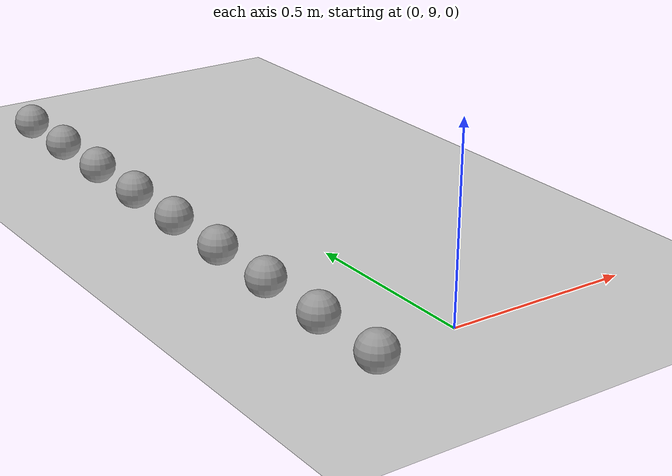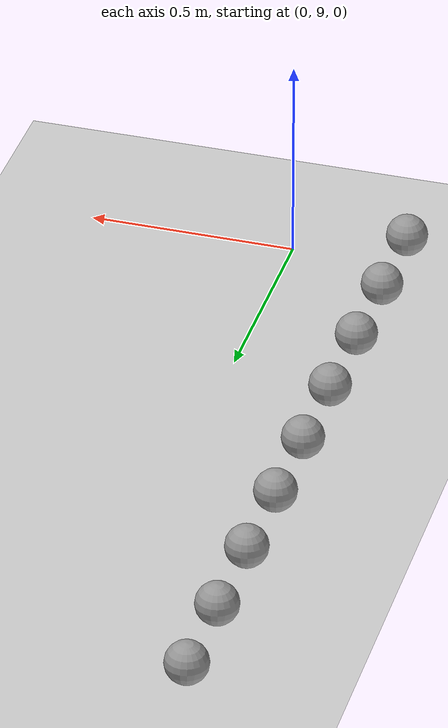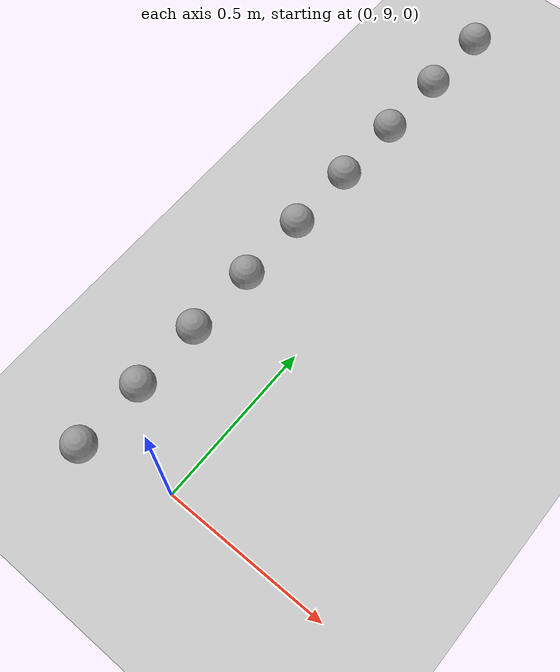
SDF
<sdf version="1.6">
 <world name="default">
  <model name="ground_plane">
   <static>1</static>
   <link name="link">
    <collision name="collision">
     <geometry><plane><normal>0 0 1</normal><size>100 100</size></plane></geometry>
     <surface><friction><ode><mu>100</mu><mu2>50</mu2></ode></friction></surface>
    </collision>
    <visual name="visual">
     <cast_shadows>0</cast_shadows>
     <geometry><plane><normal>0 0 1</normal><size>100 100</size></plane></geometry>
     <material>
      <script><uri>file://media/materials/scripts/gazebo.material</uri><name>Gazebo/Grey</name></script>
     </material>
    </visual>
   </link>
  </model>
  <model name="unit_sphere_0_42">
   <pose>-0.264000 8.938000 0.050000 0 -0 0</pose>
   <link name="link">
    <inertial>
     <mass>1</mass>
     <inertia><ixx>0.1</ixx><ixy>0</ixy><ixz>0</ixz><iyy>0.1</iyy><iyz>0</iyz><izz>0.1</izz></inertia>
    </inertial>
    <collision name="collision"><geometry><sphere><radius>0.050000</radius></sphere></geometry></collision>
    <visual name="visual">
     <geometry><sphere><radius>0.050000</radius></sphere></geometry>
     <material>
      <script><name>Gazebo/Grey</name><uri>file://media/materials/scripts/gazebo.material</uri></script>
     </material>
    </visual>
   </link>
  </model>
  <model name="unit_sphere_0_43">
   <pose>-0.261000 9.157000 0.050000 0 -0 0</pose>
   <link name="link">
    <inertial>
     <mass>1</mass>
     <inertia><ixx>0.1</ixx><ixy>0</ixy><ixz>0</ixz><iyy>0.1</iyy><iyz>0</iyz><izz>0.1</izz></inertia>
    </inertial>
    <collision name="collision"><geometry><sphere><radius>0.050000</radius></sphere></geometry></collision>
    <visual name="visual">
     <geometry><sphere><radius>0.050000</radius></sphere></geometry>
     <material>
      <script><name>Gazebo/Grey</name><uri>file://media/materials/scripts/gazebo.material</uri></script>
     </material>
    </visual>
   </link>
  </model>
  <model name="unit_sphere_0_44">
   <pose>-0.258000 9.376000 0.050000 0 -0 0</pose>
   <link name="link">
    <inertial>
     <mass>1</mass>
     <inertia><ixx>0.1</ixx><ixy>0</ixy><ixz>0</ixz><iyy>0.1</iyy><iyz>0</iyz><izz>0.1</izz></inertia>
    </inertial>
    <collision name="collision"><geometry><sphere><radius>0.050000</radius></sphere></geometry></collision>
    <visual name="visual">
     <geometry><sphere><radius>0.050000</radius></sphere></geometry>
     <material>
      <script><name>Gazebo/Grey</name><uri>file://media/materials/scripts/gazebo.material</uri></script>
     </material>
    </visual>
   </link>
  </model>
  <model name="unit_sphere_0_45">
   <pose>-0.255000 9.595000 0.050000 0 -0 0</pose>
   <link name="link">
    <inertial>
     <mass>1</mass>
     <inertia><ixx>0.1</ixx><ixy>0</ixy><ixz>0</ixz><iyy>0.1</iyy><iyz>0</iyz><izz>0.1</izz></inertia>
    </inertial>
    <collision name="collision"><geometry><sphere><radius>0.050000</radius></sphere></geometry></collision>
    <visual name="visual">
     <geometry><sphere><radius>0.050000</radius></sphere></geometry>
     <material>
      <script><name>Gazebo/Grey</name><uri>file://media/materials/scripts/gazebo.material</uri></script>
     </material>
    </visual>
   </link>
  </model>
  <model name="unit_sphere_0_46">
   <pose>-0.252000 9.814000 0.050000 0 -0 0</pose>
   <link name="link">
    <inertial>
     <mass>1</mass>
     <inertia><ixx>0.1</ixx><ixy>0</ixy><ixz>0</ixz><iyy>0.1</iyy><iyz>0</iyz><izz>0.1</izz></inertia>
    </inertial>
    <collision name="collision"><geometry><sphere><radius>0.050000</radius></sphere></geometry></collision>
    <visual name="visual">
     <geometry><sphere><radius>0.050000</radius></sphere></geometry>
     <material>
      <script><name>Gazebo/Grey</name><uri>file://media/materials/scripts/gazebo.material</uri></script>
     </material>
    </visual>
   </link>
  </model>
  <model name="unit_sphere_0_47">
   <pose>-0.249000 10.030000 0.050000 0 -0 0</pose>
   <link name="link">
    <inertial>
     <mass>1</mass>
     <inertia><ixx>0.1</ixx><ixy>0</ixy><ixz>0</ixz><iyy>0.1</iyy><iyz>0</iyz><izz>0.1</izz></inertia>
    </inertial>
    <collision name="collision"><geometry><sphere><radius>0.050000</radius></sphere></geometry></collision>
    <visual name="visual">
     <geometry><sphere><radius>0.050000</radius></sphere></geometry>
     <material>
      <script><name>Gazebo/Grey</name><uri>file://media/materials/scripts/gazebo.material</uri></script>
     </material>
    </visual>
   </link>
  </model>
  <model name="unit_sphere_0_48">
   <pose>-0.246000 10.250000 0.050000 0 -0 0</pose>
   <link name="link">
    <inertial>
     <mass>1</mass>
     <inertia><ixx>0.1</ixx><ixy>0</ixy><ixz>0</ixz><iyy>0.1</iyy><iyz>0</iyz><izz>0.1</izz></inertia>
    </inertial>
    <collision name="collision"><geometry><sphere><radius>0.050000</radius></sphere></geometry></collision>
    <visual name="visual">
     <geometry><sphere><radius>0.050000</radius></sphere></geometry>
     <material>
      <script><name>Gazebo/Grey</name><uri>file://media/materials/scripts/gazebo.material</uri></script>
     </material>
    </visual>
   </link>
  </model>
  <model name="unit_sphere_0_49">
   <pose>-0.243000 10.470000 0.050000 0 -0 0</pose>
   <link name="link">
    <inertial>
     <mass>1</mass>
     <inertia><ixx>0.1</ixx><ixy>0</ixy><ixz>0</ixz><iyy>0.1</iyy><iyz>0</iyz><izz>0.1</izz></inertia>
    </inertial>
    <collision name="collision"><geometry><sphere><radius>0.050000</radius></sphere></geometry></collision>
    <visual name="visual">
     <geometry><sphere><radius>0.050000</radius></sphere></geometry>
     <material>
      <script><name>Gazebo/Grey</name><uri>file://media/materials/scripts/gazebo.material</uri></script>
     </material>
    </visual>
   </link>
  </model>
  <model name="unit_sphere_0_50">
   <pose>-0.240000 10.690000 0.050000 0 -0 0</pose>
   <link name="link">
    <inertial>
     <mass>1</mass>
     <inertia><ixx>0.1</ixx><ixy>0</ixy><ixz>0</ixz><iyy>0.1</iyy><iyz>0</iyz><izz>0.1</izz></inertia>
    </inertial>
    <collision name="collision"><geometry><sphere><radius>0.050000</radius></sphere></geometry></collision>
    <visual name="visual">
     <geometry><sphere><radius>0.050000</radius></sphere></geometry>
     <material>
      <script><name>Gazebo/Grey</name><uri>file://media/materials/scripts/gazebo.material</uri></script>
     </material>
    </visual>
   </link>
  </model>
 </world>
</sdf>
